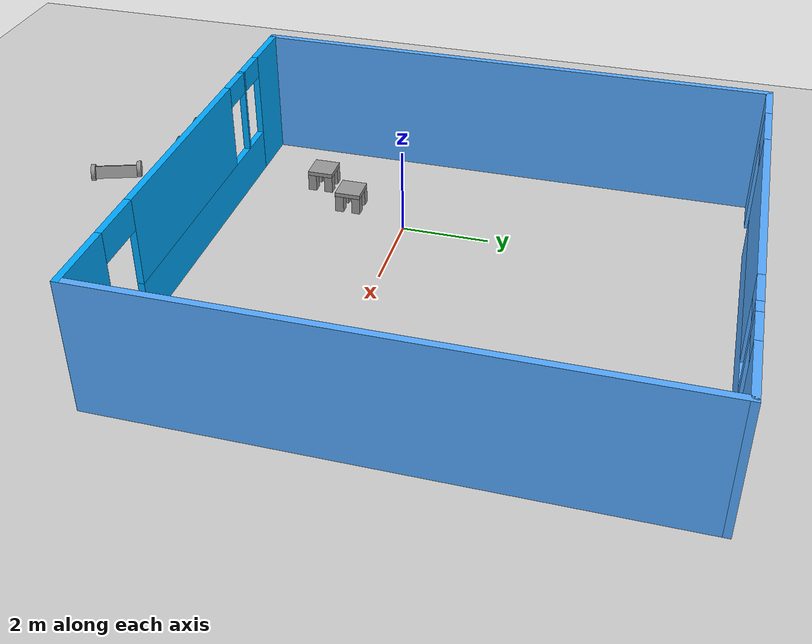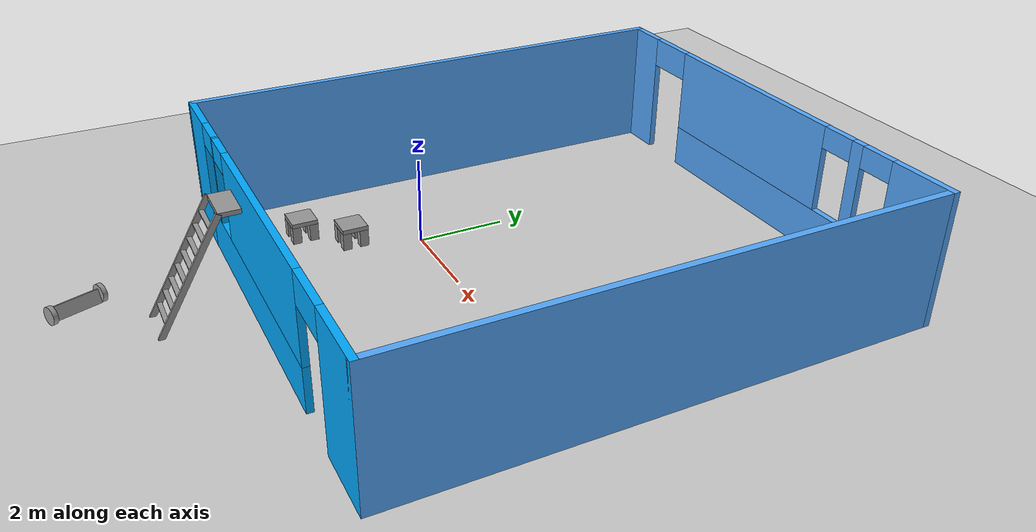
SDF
<sdf version="1.6">
 <world name="default">
  <plugin name="hello" filename="libhello.so"/>
  <light name="sun" type="directional">
   <pose>0 0 10 0 -0 0</pose>
   <diffuse>0.8 0.8 0.8 1</diffuse>
   <specular>0.2 0.2 0.2 1</specular>
   <attenuation>
    <range>1000</range>
    <constant>0.9</constant>
    <linear>0.01</linear>
    <quadratic>0.001</quadratic>
   </attenuation>
   <direction>-0.5 0.1 -0.9</direction>
  </light>
  <model name="ground_plane">
   <static>1</static>
   <link name="link">
    <collision name="collision">
     <geometry><plane><normal>0 0 1</normal><size>100 100</size></plane></geometry>
     <surface>
      <contact><collide_bitmask>65535</collide_bitmask></contact>
      <friction><ode><mu>100</mu><mu2>50</mu2></ode></friction>
     </surface>
    </collision>
    <visual name="visual">
     <cast_shadows>0</cast_shadows>
     <geometry><plane><normal>0 0 1</normal><size>100 100</size></plane></geometry>
     <material>
      <script><uri>file://media/materials/scripts/gazebo.material</uri><name>Gazebo/Grey</name></script>
     </material>
    </visual>
   </link>
  </model>
  <gravity>0 0 -9.8</gravity>
  <magnetic_field>6e-06 2.3e-05 -4.2e-05</magnetic_field>
  <atmosphere type="adiabatic"/>
  <physics name="default_physics" default="0" type="ode">
   <max_step_size>0.001</max_step_size>
   <real_time_factor>1</real_time_factor>
   <real_time_update_rate>1000</real_time_update_rate>
  </physics>
  <scene><ambient>0.4 0.4 0.4 1</ambient><background>0.7 0.7 0.7 1</background><shadows>1</shadows></scene>
  <spherical_coordinates>
   <surface_model>EARTH_WGS84</surface_model>
   <latitude_deg>0</latitude_deg>
   <longitude_deg>0</longitude_deg>
   <elevation>0</elevation>
   <heading_deg>0</heading_deg>
  </spherical_coordinates>
  <model name="table">
   <link name="link_1_clone">
    <pose>0.200158 0.19968 -0.050043 0 -0 0</pose>
    <inertial>
     <mass>1</mass>
     <inertia>
      <ixx>0.166667</ixx>
      <ixy>0</ixy>
      <ixz>0</ixz>
      <iyy>0.166667</iyy>
      <iyz>0</iyz>
      <izz>0.166667</izz>
     </inertia>
    </inertial>
    <visual name="visual">
     <geometry><box><size>0.2 0.2 0.4</size></box></geometry>
     <material>
      <lighting>1</lighting>
      <script><uri>file://media/materials/scripts/gazebo.material</uri><name>Gazebo/Grey</name></script>
      <shader type="pixel"><normal_map>__default__</normal_map></shader>
      <ambient>0.3 0.3 0.3 1</ambient>
      <diffuse>0.7 0.7 0.7 1</diffuse>
      <specular>0.01 0.01 0.01 1</specular>
      <emissive>0 0 0 1</emissive>
     </material>
    </visual>
    <collision name="collision">
     <geometry><box><size>0.2 0.2 0.4</size></box></geometry>
     <surface>
      <friction>
       <ode><mu>1</mu><mu2>1</mu2><fdir1>0 0 0</fdir1><slip1>0</slip1><slip2>0</slip2></ode>
       <torsional>
        <coefficient>1</coefficient>
        <patch_radius>0</patch_radius>
        <surface_radius>0</surface_radius>
        <use_patch_radius>1</use_patch_radius>
        <ode><slip>0</slip></ode>
       </torsional>
      </friction>
      <bounce><restitution_coefficient>0</restitution_coefficient><threshold>1e+06</threshold></bounce>
      <contact>
       <collide_without_contact>0</collide_without_contact>
       <collide_without_contact_bitmask>1</collide_without_contact_bitmask>
       <collide_bitmask>1</collide_bitmask>
       <ode>
        <soft_cfm>0</soft_cfm>
        <soft_erp>0.2</soft_erp>
        <kp>1e+13</kp>
        <kd>1</kd>
        <max_vel>0.01</max_vel>
        <min_depth>0</min_depth>
       </ode>
       <bullet>
        <split_impulse>1</split_impulse>
        <split_impulse_penetration_threshold>-0.01</split_impulse_penetration_threshold>
        <soft_cfm>0</soft_cfm>
        <soft_erp>0.2</soft_erp>
        <kp>1e+13</kp>
        <kd>1</kd>
       </bullet>
      </contact>
     </surface>
    </collision>
   </link>
   <link name="link_1_clone_0">
    <pose>-0.199842 -0.20032 -0.050043 0 -0 0</pose>
    <inertial>
     <mass>1</mass>
     <inertia>
      <ixx>0.166667</ixx>
      <ixy>0</ixy>
      <ixz>0</ixz>
      <iyy>0.166667</iyy>
      <iyz>0</iyz>
      <izz>0.166667</izz>
     </inertia>
    </inertial>
    <visual name="visual">
     <geometry><box><size>0.2 0.2 0.4</size></box></geometry>
     <material>
      <lighting>1</lighting>
      <script><uri>file://media/materials/scripts/gazebo.material</uri><name>Gazebo/Grey</name></script>
      <shader type="pixel"><normal_map>__default__</normal_map></shader>
      <ambient>0.3 0.3 0.3 1</ambient>
      <diffuse>0.7 0.7 0.7 1</diffuse>
      <specular>0.01 0.01 0.01 1</specular>
      <emissive>0 0 0 1</emissive>
     </material>
    </visual>
    <collision name="collision">
     <geometry><box><size>0.2 0.2 0.4</size></box></geometry>
     <surface>
      <friction>
       <ode><mu>1</mu><mu2>1</mu2><fdir1>0 0 0</fdir1><slip1>0</slip1><slip2>0</slip2></ode>
       <torsional>
        <coefficient>1</coefficient>
        <patch_radius>0</patch_radius>
        <surface_radius>0</surface_radius>
        <use_patch_radius>1</use_patch_radius>
        <ode><slip>0</slip></ode>
       </torsional>
      </friction>
      <bounce><restitution_coefficient>0</restitution_coefficient><threshold>1e+06</threshold></bounce>
      <contact>
       <collide_without_contact>0</collide_without_contact>
       <collide_without_contact_bitmask>1</collide_without_contact_bitmask>
       <collide_bitmask>1</collide_bitmask>
       <ode>
        <soft_cfm>0</soft_cfm>
        <soft_erp>0.2</soft_erp>
        <kp>1e+13</kp>
        <kd>1</kd>
        <max_vel>0.01</max_vel>
        <min_depth>0</min_depth>
       </ode>
       <bullet>
        <split_impulse>1</split_impulse>
        <split_impulse_penetration_threshold>-0.01</split_impulse_penetration_threshold>
        <soft_cfm>0</soft_cfm>
        <soft_erp>0.2</soft_erp>
        <kp>1e+13</kp>
        <kd>1</kd>
       </bullet>
      </contact>
     </surface>
    </collision>
   </link>
   <link name="link_1_clone_0_clone">
    <pose>-0.199842 0.19968 -0.050043 0 -0 0</pose>
    <inertial>
     <mass>1</mass>
     <inertia>
      <ixx>0.166667</ixx>
      <ixy>0</ixy>
      <ixz>0</ixz>
      <iyy>0.166667</iyy>
      <iyz>0</iyz>
      <izz>0.166667</izz>
     </inertia>
    </inertial>
    <visual name="visual">
     <geometry><box><size>0.2 0.2 0.4</size></box></geometry>
     <material>
      <lighting>1</lighting>
      <script><uri>file://media/materials/scripts/gazebo.material</uri><name>Gazebo/Grey</name></script>
      <shader type="pixel"><normal_map>__default__</normal_map></shader>
      <ambient>0.3 0.3 0.3 1</ambient>
      <diffuse>0.7 0.7 0.7 1</diffuse>
      <specular>0.01 0.01 0.01 1</specular>
      <emissive>0 0 0 1</emissive>
     </material>
    </visual>
    <collision name="collision">
     <geometry><box><size>0.2 0.2 0.4</size></box></geometry>
     <surface>
      <friction>
       <ode><mu>1</mu><mu2>1</mu2><fdir1>0 0 0</fdir1><slip1>0</slip1><slip2>0</slip2></ode>
       <torsional>
        <coefficient>1</coefficient>
        <patch_radius>0</patch_radius>
        <surface_radius>0</surface_radius>
        <use_patch_radius>1</use_patch_radius>
        <ode><slip>0</slip></ode>
       </torsional>
      </friction>
      <bounce><restitution_coefficient>0</restitution_coefficient><threshold>1e+06</threshold></bounce>
      <contact>
       <collide_without_contact>0</collide_without_contact>
       <collide_without_contact_bitmask>1</collide_without_contact_bitmask>
       <collide_bitmask>1</collide_bitmask>
       <ode>
        <soft_cfm>0</soft_cfm>
        <soft_erp>0.2</soft_erp>
        <kp>1e+13</kp>
        <kd>1</kd>
        <max_vel>0.01</max_vel>
        <min_depth>0</min_depth>
       </ode>
       <bullet>
        <split_impulse>1</split_impulse>
        <split_impulse_penetration_threshold>-0.01</split_impulse_penetration_threshold>
        <soft_cfm>0</soft_cfm>
        <soft_erp>0.2</soft_erp>
        <kp>1e+13</kp>
        <kd>1</kd>
       </bullet>
      </contact>
     </surface>
    </collision>
   </link>
   <link name="link_1_clone_1">
    <pose>0.200158 -0.20032 -0.050043 0 -0 0</pose>
    <inertial>
     <mass>1</mass>
     <inertia>
      <ixx>0.166667</ixx>
      <ixy>0</ixy>
      <ixz>0</ixz>
      <iyy>0.166667</iyy>
      <iyz>0</iyz>
      <izz>0.166667</izz>
     </inertia>
    </inertial>
    <visual name="visual">
     <geometry><box><size>0.2 0.2 0.4</size></box></geometry>
     <material>
      <lighting>1</lighting>
      <script><uri>file://media/materials/scripts/gazebo.material</uri><name>Gazebo/Grey</name></script>
      <shader type="pixel"><normal_map>__default__</normal_map></shader>
      <ambient>0.3 0.3 0.3 1</ambient>
      <diffuse>0.7 0.7 0.7 1</diffuse>
      <specular>0.01 0.01 0.01 1</specular>
      <emissive>0 0 0 1</emissive>
     </material>
    </visual>
    <collision name="collision">
     <geometry><box><size>0.2 0.2 0.4</size></box></geometry>
     <surface>
      <friction>
       <ode><mu>1</mu><mu2>1</mu2><fdir1>0 0 0</fdir1><slip1>0</slip1><slip2>0</slip2></ode>
       <torsional>
        <coefficient>1</coefficient>
        <patch_radius>0</patch_radius>
        <surface_radius>0</surface_radius>
        <use_patch_radius>1</use_patch_radius>
        <ode><slip>0</slip></ode>
       </torsional>
      </friction>
      <bounce><restitution_coefficient>0</restitution_coefficient><threshold>1e+06</threshold></bounce>
      <contact>
       <collide_without_contact>0</collide_without_contact>
       <collide_without_contact_bitmask>1</collide_without_contact_bitmask>
       <collide_bitmask>1</collide_bitmask>
       <ode>
        <soft_cfm>0</soft_cfm>
        <soft_erp>0.2</soft_erp>
        <kp>1e+13</kp>
        <kd>1</kd>
        <max_vel>0.01</max_vel>
        <min_depth>0</min_depth>
       </ode>
       <bullet>
        <split_impulse>1</split_impulse>
        <split_impulse_penetration_threshold>-0.01</split_impulse_penetration_threshold>
        <soft_cfm>0</soft_cfm>
        <soft_erp>0.2</soft_erp>
        <kp>1e+13</kp>
        <kd>1</kd>
       </bullet>
      </contact>
     </surface>
    </collision>
   </link>
   <link name="link_2">
    <pose>-0.000627 0.001275 0.200294 0 -0 0</pose>
    <inertial>
     <mass>1</mass>
     <inertia>
      <ixx>0.166667</ixx>
      <ixy>0</ixy>
      <ixz>0</ixz>
      <iyy>0.166667</iyy>
      <iyz>0</iyz>
      <izz>0.166667</izz>
     </inertia>
    </inertial>
    <visual name="visual">
     <geometry><box><size>0.6 0.6 0.1</size></box></geometry>
     <material>
      <lighting>1</lighting>
      <script><uri>file://media/materials/scripts/gazebo.material</uri><name>Gazebo/Grey</name></script>
      <shader type="pixel"><normal_map>__default__</normal_map></shader>
      <ambient>0.3 0.3 0.3 1</ambient>
      <diffuse>0.7 0.7 0.7 1</diffuse>
      <specular>0.01 0.01 0.01 1</specular>
      <emissive>0 0 0 1</emissive>
     </material>
    </visual>
    <collision name="collision">
     <geometry><box><size>0.6 0.6 0.1</size></box></geometry>
     <surface>
      <friction>
       <ode><mu>1</mu><mu2>1</mu2><fdir1>0 0 0</fdir1><slip1>0</slip1><slip2>0</slip2></ode>
       <torsional>
        <coefficient>1</coefficient>
        <patch_radius>0</patch_radius>
        <surface_radius>0</surface_radius>
        <use_patch_radius>1</use_patch_radius>
        <ode><slip>0</slip></ode>
       </torsional>
      </friction>
      <bounce><restitution_coefficient>0</restitution_coefficient><threshold>1e+06</threshold></bounce>
      <contact>
       <collide_without_contact>0</collide_without_contact>
       <collide_without_contact_bitmask>1</collide_without_contact_bitmask>
       <collide_bitmask>1</collide_bitmask>
       <ode>
        <soft_cfm>0</soft_cfm>
        <soft_erp>0.2</soft_erp>
        <kp>1e+13</kp>
        <kd>1</kd>
        <max_vel>0.01</max_vel>
        <min_depth>0</min_depth>
       </ode>
       <bullet>
        <split_impulse>1</split_impulse>
        <split_impulse_penetration_threshold>-0.01</split_impulse_penetration_threshold>
        <soft_cfm>0</soft_cfm>
        <soft_erp>0.2</soft_erp>
        <kp>1e+13</kp>
        <kd>1</kd>
       </bullet>
      </contact>
     </surface>
    </collision>
   </link>
   <joint name="link_2_JOINT_0" type="fixed">
    <parent>link_2</parent>
    <child>link_1_clone_0</child>
    <physics>
     <ode><limit><cfm>0</cfm><erp>0.2</erp></limit><suspension><cfm>0</cfm><erp>0.2</erp></suspension></ode>
    </physics>
   </joint>
   <joint name="link_2_JOINT_1" type="fixed">
    <parent>link_2</parent>
    <child>link_1_clone</child>
    <physics>
     <ode><limit><cfm>0</cfm><erp>0.2</erp></limit><suspension><cfm>0</cfm><erp>0.2</erp></suspension></ode>
    </physics>
   </joint>
   <joint name="link_2_JOINT_2" type="fixed">
    <parent>link_2</parent>
    <child>link_1_clone_1</child>
    <physics>
     <ode><limit><cfm>0</cfm><erp>0.2</erp></limit><suspension><cfm>0</cfm><erp>0.2</erp></suspension></ode>
    </physics>
   </joint>
   <joint name="link_2_JOINT_4" type="fixed">
    <parent>link_2</parent>
    <child>link_1_clone_0_clone</child>
    <physics>
     <ode><limit><cfm>0</cfm><erp>0.2</erp></limit><suspension><cfm>0</cfm><erp>0.2</erp></suspension></ode>
    </physics>
   </joint>
   <static>0</static>
   <pose>-1.38464 -2.38197 0.250043 -2e-06 -1e-06 3e-05</pose>
  </model>
  <model name="ladder_60deg_0rails">
   <static>1</static>
   <link name="step0">
    <pose>0 0.15396 0.266667 0 -0 0</pose>
    <inertial>
     <mass>9.75482</mass>
     <inertia>
      <ixx>0.00957124</ixx>
      <iyy>0.65963</iyy>
      <izz>0.666842</izz>
      <ixy>0</ixy>
      <ixz>0</ixz>
      <iyz>0</iyz>
     </inertia>
    </inertial>
    <collision name="collision"><geometry><box><size>0.9 0.1016 0.0381</size></box></geometry></collision>
    <visual name="visual">
     <geometry><box><size>0.9 0.1016 0.0381</size></box></geometry>
     <material>
      <script><uri>file://media/materials/scripts/gazebo.material</uri><name>Gazebo/Grey</name></script>
     </material>
    </visual>
   </link>
   <link name="step1">
    <pose>0 0.30792 0.533333 0 -0 0</pose>
    <inertial>
     <mass>9.75482</mass>
     <inertia>
      <ixx>0.00957124</ixx>
      <iyy>0.65963</iyy>
      <izz>0.666842</izz>
      <ixy>0</ixy>
      <ixz>0</ixz>
      <iyz>0</iyz>
     </inertia>
    </inertial>
    <collision name="collision"><geometry><box><size>0.9 0.1016 0.0381</size></box></geometry></collision>
    <visual name="visual">
     <geometry><box><size>0.9 0.1016 0.0381</size></box></geometry>
     <material>
      <script><uri>file://media/materials/scripts/gazebo.material</uri><name>Gazebo/Grey</name></script>
     </material>
    </visual>
   </link>
   <link name="step2">
    <pose>0 0.46188 0.8 0 -0 0</pose>
    <inertial>
     <mass>9.75482</mass>
     <inertia>
      <ixx>0.00957124</ixx>
      <iyy>0.65963</iyy>
      <izz>0.666842</izz>
      <ixy>0</ixy>
      <ixz>0</ixz>
      <iyz>0</iyz>
     </inertia>
    </inertial>
    <collision name="collision"><geometry><box><size>0.9 0.1016 0.0381</size></box></geometry></collision>
    <visual name="visual">
     <geometry><box><size>0.9 0.1016 0.0381</size></box></geometry>
     <material>
      <script><uri>file://media/materials/scripts/gazebo.material</uri><name>Gazebo/Grey</name></script>
     </material>
    </visual>
   </link>
   <link name="step3">
    <pose>0 0.61584 1.06667 0 -0 0</pose>
    <inertial>
     <mass>9.75482</mass>
     <inertia>
      <ixx>0.00957124</ixx>
      <iyy>0.65963</iyy>
      <izz>0.666842</izz>
      <ixy>0</ixy>
      <ixz>0</ixz>
      <iyz>0</iyz>
     </inertia>
    </inertial>
    <collision name="collision"><geometry><box><size>0.9 0.1016 0.0381</size></box></geometry></collision>
    <visual name="visual">
     <geometry><box><size>0.9 0.1016 0.0381</size></box></geometry>
     <material>
      <script><uri>file://media/materials/scripts/gazebo.material</uri><name>Gazebo/Grey</name></script>
     </material>
    </visual>
   </link>
   <link name="step4">
    <pose>0 0.7698 1.33333 0 -0 0</pose>
    <inertial>
     <mass>9.75482</mass>
     <inertia>
      <ixx>0.00957124</ixx>
      <iyy>0.65963</iyy>
      <izz>0.666842</izz>
      <ixy>0</ixy>
      <ixz>0</ixz>
      <iyz>0</iyz>
     </inertia>
    </inertial>
    <collision name="collision"><geometry><box><size>0.9 0.1016 0.0381</size></box></geometry></collision>
    <visual name="visual">
     <geometry><box><size>0.9 0.1016 0.0381</size></box></geometry>
     <material>
      <script><uri>file://media/materials/scripts/gazebo.material</uri><name>Gazebo/Grey</name></script>
     </material>
    </visual>
   </link>
   <link name="step5">
    <pose>0 0.92376 1.6 0 -0 0</pose>
    <inertial>
     <mass>9.75482</mass>
     <inertia>
      <ixx>0.00957124</ixx>
      <iyy>0.65963</iyy>
      <izz>0.666842</izz>
      <ixy>0</ixy>
      <ixz>0</ixz>
      <iyz>0</iyz>
     </inertia>
    </inertial>
    <collision name="collision"><geometry><box><size>0.9 0.1016 0.0381</size></box></geometry></collision>
    <visual name="visual">
     <geometry><box><size>0.9 0.1016 0.0381</size></box></geometry>
     <material>
      <script><uri>file://media/materials/scripts/gazebo.material</uri><name>Gazebo/Grey</name></script>
     </material>
    </visual>
   </link>
   <link name="step6">
    <pose>0 1.07772 1.86667 0 -0 0</pose>
    <inertial>
     <mass>9.75482</mass>
     <inertia>
      <ixx>0.00957124</ixx>
      <iyy>0.65963</iyy>
      <izz>0.666842</izz>
      <ixy>0</ixy>
      <ixz>0</ixz>
      <iyz>0</iyz>
     </inertia>
    </inertial>
    <collision name="collision"><geometry><box><size>0.9 0.1016 0.0381</size></box></geometry></collision>
    <visual name="visual">
     <geometry><box><size>0.9 0.1016 0.0381</size></box></geometry>
     <material>
      <script><uri>file://media/materials/scripts/gazebo.material</uri><name>Gazebo/Grey</name></script>
     </material>
    </visual>
   </link>
   <link name="step7">
    <pose>0 1.23168 2.13333 0 -0 0</pose>
    <inertial>
     <mass>9.75482</mass>
     <inertia>
      <ixx>0.00957124</ixx>
      <iyy>0.65963</iyy>
      <izz>0.666842</izz>
      <ixy>0</ixy>
      <ixz>0</ixz>
      <iyz>0</iyz>
     </inertia>
    </inertial>
    <collision name="collision"><geometry><box><size>0.9 0.1016 0.0381</size></box></geometry></collision>
    <visual name="visual">
     <geometry><box><size>0.9 0.1016 0.0381</size></box></geometry>
     <material>
      <script><uri>file://media/materials/scripts/gazebo.material</uri><name>Gazebo/Grey</name></script>
     </material>
    </visual>
   </link>
   <link name="landing">
    <pose>0 1.68564 2.4 0 -0 0</pose>
    <inertial>
     <mass>57.6072</mass>
     <inertia><ixx>1.73518</ixx><iyy>3.89545</iyy><izz>5.6167</izz><ixy>0</ixy><ixz>0</ixz><iyz>0</iyz></inertia>
    </inertial>
    <collision name="collision"><geometry><box><size>0.9 0.6 0.1016</size></box></geometry></collision>
    <visual name="visual">
     <geometry><box><size>0.9 0.6 0.1016</size></box></geometry>
     <material>
      <script><uri>file://media/materials/scripts/gazebo.material</uri><name>Gazebo/Grey</name></script>
     </material>
    </visual>
   </link>
   <link name="left_side_wall">
    <pose>-0.45 0.69282 1.2 1.0472 -0 0</pose>
    <collision name="collision"><geometry><box><size>0.0508 2.85128 0.13</size></box></geometry></collision>
    <visual name="visual">
     <geometry><box><size>0.0508 2.85128 0.13</size></box></geometry>
     <material>
      <script><uri>file://media/materials/scripts/gazebo.material</uri><name>Gazebo/Grey</name></script>
     </material>
    </visual>
   </link>
   <link name="right_side_wall">
    <pose>0.45 0.69282 1.2 1.0472 -0 0</pose>
    <collision name="collision"><geometry><box><size>0.0508 2.85128 0.13</size></box></geometry></collision>
    <visual name="visual">
     <geometry><box><size>0.0508 2.85128 0.13</size></box></geometry>
     <material>
      <script><uri>file://media/materials/scripts/gazebo.material</uri><name>Gazebo/Grey</name></script>
     </material>
    </visual>
   </link>
   <pose>0.882643 -6.08291 0 0 -0 0</pose>
  </model>
  <model name="bluehouse">
   <pose>2.21515 1.76967 0 0 -0 0</pose>
   <link name="Wall_5">
    <collision name="Wall_5_Collision">
     <geometry><box><size>12 0.15 3</size></box></geometry>
     <pose>0 0 1.5 0 -0 0</pose>
    </collision>
    <visual name="Wall_5_Visual">
     <pose>0 0 1.5 0 -0 0</pose>
     <geometry><box><size>12 0.15 3</size></box></geometry>
     <material>
      <script><uri>file://media/materials/scripts/gazebo.material</uri><name>Gazebo/Grey</name></script>
      <ambient>0.333333 0.666667 1 1</ambient>
     </material>
     <meta><layer>0</layer></meta>
    </visual>
    <pose>-5.3 0 0 0 0 -1.5708</pose>
   </link>
   <link name="Wall_6">
    <pose>-1e-06 -5.925 0 0 -0 0</pose>
    <visual name="Wall_6_Visual_0">
     <pose>-4.69968 0 1.5 0 -0 0</pose>
     <geometry><box><size>1.35065 0.15 3</size></box></geometry>
     <material>
      <script><uri>file://media/materials/scripts/gazebo.material</uri><name>Gazebo/Grey</name></script>
      <ambient>0 0.666667 1 1</ambient>
     </material>
     <meta><layer>0</layer></meta>
    </visual>
    <collision name="Wall_6_Collision_0">
     <geometry><box><size>1.35065 0.15 3</size></box></geometry>
     <pose>-4.69968 0 1.5 0 -0 0</pose>
    </collision>
    <visual name="Wall_6_Visual_1">
     <pose>4.574 0 1.5 0 -0 0</pose>
     <geometry><box><size>1.602 0.15 3</size></box></geometry>
     <material>
      <script><uri>file://media/materials/scripts/gazebo.material</uri><name>Gazebo/Grey</name></script>
      <ambient>0 0.666667 1 1</ambient>
     </material>
     <meta><layer>0</layer></meta>
    </visual>
    <collision name="Wall_6_Collision_1">
     <geometry><box><size>1.602 0.15 3</size></box></geometry>
     <pose>4.574 0 1.5 0 -0 0</pose>
    </collision>
    <visual name="Wall_6_Visual_2">
     <pose>-0.725675 0 0.5 0 -0 0</pose>
     <geometry><box><size>6.59735 0.15 1</size></box></geometry>
     <material>
      <script><uri>file://media/materials/scripts/gazebo.material</uri><name>Gazebo/Grey</name></script>
      <ambient>0 0.666667 1 1</ambient>
     </material>
     <meta><layer>0</layer></meta>
    </visual>
    <collision name="Wall_6_Collision_2">
     <geometry><box><size>6.59735 0.15 1</size></box></geometry>
     <pose>-0.725675 0 0.5 0 -0 0</pose>
    </collision>
    <visual name="Wall_6_Visual_3">
     <pose>-3.18814 0 2 0 -0 0</pose>
     <geometry><box><size>0.072422 0.15 2</size></box></geometry>
     <material>
      <script><uri>file://media/materials/scripts/gazebo.material</uri><name>Gazebo/Grey</name></script>
      <ambient>0 0.666667 1 1</ambient>
     </material>
     <meta><layer>0</layer></meta>
    </visual>
    <collision name="Wall_6_Collision_3">
     <geometry><box><size>0.072422 0.15 2</size></box></geometry>
     <pose>-3.18814 0 2 0 -0 0</pose>
    </collision>
    <visual name="Wall_6_Visual_4">
     <pose>0.110536 0 2 0 -0 0</pose>
     <geometry><box><size>4.92493 0.15 2</size></box></geometry>
     <material>
      <script><uri>file://media/materials/scripts/gazebo.material</uri><name>Gazebo/Grey</name></script>
      <ambient>0 0.666667 1 1</ambient>
     </material>
     <meta><layer>0</layer></meta>
    </visual>
    <collision name="Wall_6_Collision_4">
     <geometry><box><size>4.92493 0.15 2</size></box></geometry>
     <pose>0.110536 0 2 0 -0 0</pose>
    </collision>
    <visual name="Wall_6_Visual_5">
     <pose>3.173 0 2.65 0 -0 0</pose>
     <geometry><box><size>1.2 0.15 0.7</size></box></geometry>
     <material>
      <script><uri>file://media/materials/scripts/gazebo.material</uri><name>Gazebo/Grey</name></script>
      <ambient>0 0.666667 1 1</ambient>
     </material>
     <meta><layer>0</layer></meta>
    </visual>
    <collision name="Wall_6_Collision_5">
     <geometry><box><size>1.2 0.15 0.7</size></box></geometry>
     <pose>3.173 0 2.65 0 -0 0</pose>
    </collision>
    <visual name="Wall_6_Visual_6">
     <pose>-3.62435 0 2.75 0 -0 0</pose>
     <geometry><box><size>0.8 0.15 0.5</size></box></geometry>
     <material>
      <script><uri>file://media/materials/scripts/gazebo.material</uri><name>Gazebo/Grey</name></script>
      <ambient>0 0.666667 1 1</ambient>
     </material>
     <meta><layer>0</layer></meta>
    </visual>
    <collision name="Wall_6_Collision_6">
     <geometry><box><size>0.8 0.15 0.5</size></box></geometry>
     <pose>-3.62435 0 2.75 0 -0 0</pose>
    </collision>
    <visual name="Wall_6_Visual_7">
     <pose>-2.75193 0 2.75 0 -0 0</pose>
     <geometry><box><size>0.8 0.15 0.5</size></box></geometry>
     <material>
      <script><uri>file://media/materials/scripts/gazebo.material</uri><name>Gazebo/Grey</name></script>
      <ambient>0 0.666667 1 1</ambient>
     </material>
     <meta><layer>0</layer></meta>
    </visual>
    <collision name="Wall_6_Collision_7">
     <geometry><box><size>0.8 0.15 0.5</size></box></geometry>
     <pose>-2.75193 0 2.75 0 -0 0</pose>
    </collision>
   </link>
   <link name="Wall_7">
    <collision name="Wall_7_Collision">
     <geometry><box><size>12 0.15 3</size></box></geometry>
     <pose>0 0 1.5 0 -0 0</pose>
    </collision>
    <visual name="Wall_7_Visual">
     <pose>0 0 1.5 0 -0 0</pose>
     <geometry><box><size>12 0.15 3</size></box></geometry>
     <material>
      <script><uri>file://media/materials/scripts/gazebo.material</uri><name>Gazebo/Grey</name></script>
      <ambient>0.333333 0.666667 1 1</ambient>
     </material>
     <meta><layer>0</layer></meta>
    </visual>
    <pose>5.3 0 0 0 -0 1.5708</pose>
   </link>
   <link name="Wall_8">
    <pose>-1e-06 5.925 0 0 -0 3.14159</pose>
    <visual name="Wall_8_Visual_0">
     <pose>-4.6064 0 1.5 0 -0 0</pose>
     <geometry><box><size>1.5372 0.15 3</size></box></geometry>
     <material>
      <script><uri>file://media/materials/scripts/gazebo.material</uri><name>Gazebo/Grey</name></script>
      <ambient>0.333333 0.666667 1 1</ambient>
     </material>
     <meta><layer>0</layer></meta>
    </visual>
    <collision name="Wall_8_Collision_0">
     <geometry><box><size>1.5372 0.15 3</size></box></geometry>
     <pose>-4.6064 0 1.5 0 -0 0</pose>
    </collision>
    <visual name="Wall_8_Visual_1">
     <pose>4.83935 0 1.5 0 -0 0</pose>
     <geometry><box><size>1.0713 0.15 3</size></box></geometry>
     <material>
      <script><uri>file://media/materials/scripts/gazebo.material</uri><name>Gazebo/Grey</name></script>
      <ambient>0.333333 0.666667 1 1</ambient>
     </material>
     <meta><layer>0</layer></meta>
    </visual>
    <collision name="Wall_8_Collision_1">
     <geometry><box><size>1.0713 0.15 3</size></box></geometry>
     <pose>4.83935 0 1.5 0 -0 0</pose>
    </collision>
    <visual name="Wall_8_Visual_2">
     <pose>-0.367049 0 0.5 0 -0 0</pose>
     <geometry><box><size>6.9415 0.15 1</size></box></geometry>
     <material>
      <script><uri>file://media/materials/scripts/gazebo.material</uri><name>Gazebo/Grey</name></script>
      <ambient>0.333333 0.666667 1 1</ambient>
     </material>
     <meta><layer>0</layer></meta>
    </visual>
    <collision name="Wall_8_Collision_2">
     <geometry><box><size>6.9415 0.15 1</size></box></geometry>
     <pose>-0.367049 0 0.5 0 -0 0</pose>
    </collision>
    <visual name="Wall_8_Visual_3">
     <pose>-2.88235 0 2 0 -0 0</pose>
     <geometry><box><size>0.3109 0.15 2</size></box></geometry>
     <material>
      <script><uri>file://media/materials/scripts/gazebo.material</uri><name>Gazebo/Grey</name></script>
      <ambient>0.333333 0.666667 1 1</ambient>
     </material>
     <meta><layer>0</layer></meta>
    </visual>
    <collision name="Wall_8_Collision_3">
     <geometry><box><size>0.3109 0.15 2</size></box></geometry>
     <pose>-2.88235 0 2 0 -0 0</pose>
    </collision>
    <visual name="Wall_8_Visual_4">
     <pose>0.588401 0 2 0 -0 0</pose>
     <geometry><box><size>5.0306 0.15 2</size></box></geometry>
     <material>
      <script><uri>file://media/materials/scripts/gazebo.material</uri><name>Gazebo/Grey</name></script>
      <ambient>0.333333 0.666667 1 1</ambient>
     </material>
     <meta><layer>0</layer></meta>
    </visual>
    <collision name="Wall_8_Collision_4">
     <geometry><box><size>5.0306 0.15 2</size></box></geometry>
     <pose>0.588401 0 2 0 -0 0</pose>
    </collision>
    <visual name="Wall_8_Visual_5">
     <pose>3.7037 0 2.65 0 -0 0</pose>
     <geometry><box><size>1.2 0.15 0.7</size></box></geometry>
     <material>
      <script><uri>file://media/materials/scripts/gazebo.material</uri><name>Gazebo/Grey</name></script>
      <ambient>0.333333 0.666667 1 1</ambient>
     </material>
     <meta><layer>0</layer></meta>
    </visual>
    <collision name="Wall_8_Collision_5">
     <geometry><box><size>1.2 0.15 0.7</size></box></geometry>
     <pose>3.7037 0 2.65 0 -0 0</pose>
    </collision>
    <visual name="Wall_8_Visual_6">
     <pose>-3.4378 0 2.75 0 -0 0</pose>
     <geometry><box><size>0.8 0.15 0.5</size></box></geometry>
     <material>
      <script><uri>file://media/materials/scripts/gazebo.material</uri><name>Gazebo/Grey</name></script>
      <ambient>0.333333 0.666667 1 1</ambient>
     </material>
     <meta><layer>0</layer></meta>
    </visual>
    <collision name="Wall_8_Collision_6">
     <geometry><box><size>0.8 0.15 0.5</size></box></geometry>
     <pose>-3.4378 0 2.75 0 -0 0</pose>
    </collision>
    <visual name="Wall_8_Visual_7">
     <pose>-2.3269 0 2.75 0 -0 0</pose>
     <geometry><box><size>0.8 0.15 0.5</size></box></geometry>
     <material>
      <script><uri>file://media/materials/scripts/gazebo.material</uri><name>Gazebo/Grey</name></script>
      <ambient>0.333333 0.666667 1 1</ambient>
     </material>
     <meta><layer>0</layer></meta>
    </visual>
    <collision name="Wall_8_Collision_7">
     <geometry><box><size>0.8 0.15 0.5</size></box></geometry>
     <pose>-2.3269 0 2.75 0 -0 0</pose>
    </collision>
   </link>
   <static>1</static>
  </model>
  <model name="two_wheel_robot">
   <link name="link_0">
    <pose>-0.016667 -0 0 0 -0 0</pose>
    <inertial>
     <mass>1</mass>
     <inertia>
      <ixx>0.166667</ixx>
      <ixy>0</ixy>
      <ixz>0</ixz>
      <iyy>0.166667</iyy>
      <iyz>0</iyz>
      <izz>0.166667</izz>
     </inertia>
    </inertial>
    <visual name="visual">
     <geometry><box><size>0.3 1 0.1</size></box></geometry>
     <material>
      <lighting>1</lighting>
      <script><uri>file://media/materials/scripts/gazebo.material</uri><name>Gazebo/Grey</name></script>
      <shader type="pixel"><normal_map>__default__</normal_map></shader>
      <ambient>0.3 0.3 0.3 1</ambient>
      <diffuse>0.7 0.7 0.7 1</diffuse>
      <specular>0.01 0.01 0.01 1</specular>
      <emissive>0 0 0 1</emissive>
     </material>
    </visual>
    <collision name="collision">
     <geometry><box><size>0.3 1 0.1</size></box></geometry>
     <surface>
      <friction>
       <ode><mu>1</mu><mu2>1</mu2><fdir1>0 0 0</fdir1><slip1>0</slip1><slip2>0</slip2></ode>
       <torsional>
        <coefficient>1</coefficient>
        <patch_radius>0</patch_radius>
        <surface_radius>0</surface_radius>
        <use_patch_radius>1</use_patch_radius>
        <ode><slip>0</slip></ode>
       </torsional>
      </friction>
      <bounce><restitution_coefficient>0</restitution_coefficient><threshold>1e+06</threshold></bounce>
      <contact>
       <collide_without_contact>0</collide_without_contact>
       <collide_without_contact_bitmask>1</collide_without_contact_bitmask>
       <collide_bitmask>1</collide_bitmask>
       <ode>
        <soft_cfm>0</soft_cfm>
        <soft_erp>0.2</soft_erp>
        <kp>1e+13</kp>
        <kd>1</kd>
        <max_vel>0.01</max_vel>
        <min_depth>0</min_depth>
       </ode>
       <bullet>
        <split_impulse>1</split_impulse>
        <split_impulse_penetration_threshold>-0.01</split_impulse_penetration_threshold>
        <soft_cfm>0</soft_cfm>
        <soft_erp>0.2</soft_erp>
        <kp>1e+13</kp>
        <kd>1</kd>
       </bullet>
      </contact>
     </surface>
    </collision>
   </link>
   <link name="link_1">
    <pose>-0.016667 -0.55002 0 1.5707 -0 0</pose>
    <inertial>
     <mass>1</mass>
     <inertia><ixx>0.145833</ixx><ixy>0</ixy><ixz>0</ixz><iyy>0.145833</iyy><iyz>0</iyz><izz>0.125</izz></inertia>
    </inertial>
    <visual name="visual">
     <geometry><cylinder><radius>0.2</radius><length>0.1</length></cylinder></geometry>
     <material>
      <lighting>1</lighting>
      <script><uri>file://media/materials/scripts/gazebo.material</uri><name>Gazebo/Grey</name></script>
      <shader type="pixel"><normal_map>__default__</normal_map></shader>
      <ambient>0.3 0.3 0.3 1</ambient>
      <diffuse>0.7 0.7 0.7 1</diffuse>
      <specular>0.01 0.01 0.01 1</specular>
      <emissive>0 0 0 1</emissive>
     </material>
    </visual>
    <collision name="collision">
     <geometry><cylinder><radius>0.2</radius><length>0.1</length></cylinder></geometry>
     <surface>
      <friction>
       <ode><mu>1</mu><mu2>1</mu2><fdir1>0 0 0</fdir1><slip1>0</slip1><slip2>0</slip2></ode>
       <torsional>
        <coefficient>1</coefficient>
        <patch_radius>0</patch_radius>
        <surface_radius>0</surface_radius>
        <use_patch_radius>1</use_patch_radius>
        <ode><slip>0</slip></ode>
       </torsional>
      </friction>
      <bounce><restitution_coefficient>0</restitution_coefficient><threshold>1e+06</threshold></bounce>
      <contact>
       <collide_without_contact>0</collide_without_contact>
       <collide_without_contact_bitmask>1</collide_without_contact_bitmask>
       <collide_bitmask>1</collide_bitmask>
       <ode>
        <soft_cfm>0</soft_cfm>
        <soft_erp>0.2</soft_erp>
        <kp>1e+13</kp>
        <kd>1</kd>
        <max_vel>0.01</max_vel>
        <min_depth>0</min_depth>
       </ode>
       <bullet>
        <split_impulse>1</split_impulse>
        <split_impulse_penetration_threshold>-0.01</split_impulse_penetration_threshold>
        <soft_cfm>0</soft_cfm>
        <soft_erp>0.2</soft_erp>
        <kp>1e+13</kp>
        <kd>1</kd>
       </bullet>
      </contact>
     </surface>
    </collision>
   </link>
   <link name="link_1_clone">
    <pose>0.033333 0.550019 0 1.5707 -0 0</pose>
    <inertial>
     <mass>1</mass>
     <inertia><ixx>0.145833</ixx><ixy>0</ixy><ixz>0</ixz><iyy>0.145833</iyy><iyz>0</iyz><izz>0.125</izz></inertia>
    </inertial>
    <visual name="visual">
     <geometry><cylinder><radius>0.2</radius><length>0.1</length></cylinder></geometry>
     <material>
      <lighting>1</lighting>
      <script><uri>file://media/materials/scripts/gazebo.material</uri><name>Gazebo/Grey</name></script>
      <shader type="pixel"><normal_map>__default__</normal_map></shader>
      <ambient>0.3 0.3 0.3 1</ambient>
      <diffuse>0.7 0.7 0.7 1</diffuse>
      <specular>0.01 0.01 0.01 1</specular>
      <emissive>0 0 0 1</emissive>
     </material>
    </visual>
    <collision name="collision">
     <geometry><cylinder><radius>0.2</radius><length>0.1</length></cylinder></geometry>
     <surface>
      <friction>
       <ode><mu>1</mu><mu2>1</mu2><fdir1>0 0 0</fdir1><slip1>0</slip1><slip2>0</slip2></ode>
       <torsional>
        <coefficient>1</coefficient>
        <patch_radius>0</patch_radius>
        <surface_radius>0</surface_radius>
        <use_patch_radius>1</use_patch_radius>
        <ode><slip>0</slip></ode>
       </torsional>
      </friction>
      <bounce><restitution_coefficient>0</restitution_coefficient><threshold>1e+06</threshold></bounce>
      <contact>
       <collide_without_contact>0</collide_without_contact>
       <collide_without_contact_bitmask>1</collide_without_contact_bitmask>
       <collide_bitmask>1</collide_bitmask>
       <ode>
        <soft_cfm>0</soft_cfm>
        <soft_erp>0.2</soft_erp>
        <kp>1e+13</kp>
        <kd>1</kd>
        <max_vel>0.01</max_vel>
        <min_depth>0</min_depth>
       </ode>
       <bullet>
        <split_impulse>1</split_impulse>
        <split_impulse_penetration_threshold>-0.01</split_impulse_penetration_threshold>
        <soft_cfm>0</soft_cfm>
        <soft_erp>0.2</soft_erp>
        <kp>1e+13</kp>
        <kd>1</kd>
       </bullet>
      </contact>
     </surface>
    </collision>
   </link>
   <joint name="link_0_JOINT_0" type="revolute">
    <parent>link_0</parent>
    <child>link_1</child>
    <axis>
     <xyz>0 0 1</xyz>
     <use_parent_model_frame>0</use_parent_model_frame>
     <limit>
      <lower>-1.79769e+308</lower>
      <upper>1.79769e+308</upper>
      <effort>-1</effort>
      <velocity>-1</velocity>
     </limit>
     <dynamics>
      <spring_reference>0</spring_reference>
      <spring_stiffness>0</spring_stiffness>
      <damping>0</damping>
     </dynamics>
    </axis>
    <physics>
     <ode><limit><cfm>0</cfm><erp>0.2</erp></limit><suspension><cfm>0</cfm><erp>0.2</erp></suspension></ode>
    </physics>
   </joint>
   <joint name="link_0_JOINT_1" type="revolute">
    <parent>link_0</parent>
    <child>link_1_clone</child>
    <axis>
     <xyz>0 0 1</xyz>
     <use_parent_model_frame>0</use_parent_model_frame>
     <limit>
      <lower>-1.79769e+308</lower>
      <upper>1.79769e+308</upper>
      <effort>-1</effort>
      <velocity>-1</velocity>
     </limit>
     <dynamics>
      <spring_reference>0</spring_reference>
      <spring_stiffness>0</spring_stiffness>
      <damping>0</damping>
     </dynamics>
    </axis>
    <physics>
     <ode><limit><cfm>0</cfm><erp>0.2</erp></limit><suspension><cfm>0</cfm><erp>0.2</erp></suspension></ode>
    </physics>
   </joint>
   <static>0</static>
   <pose>-0.358449 -7.43638 0.194198 -3.02901 -1.18633 -2.84525</pose>
  </model>
  <model name="table_clone">
   <link name="link_1_clone">
    <pose>0.200158 0.19968 -0.050043 0 -0 0</pose>
    <inertial>
     <mass>1</mass>
     <inertia>
      <ixx>0.166667</ixx>
      <ixy>0</ixy>
      <ixz>0</ixz>
      <iyy>0.166667</iyy>
      <iyz>0</iyz>
      <izz>0.166667</izz>
     </inertia>
    </inertial>
    <visual name="visual">
     <geometry><box><size>0.2 0.2 0.4</size></box></geometry>
     <material>
      <lighting>1</lighting>
      <script><uri>file://media/materials/scripts/gazebo.material</uri><name>Gazebo/Grey</name></script>
      <shader type="pixel"><normal_map>__default__</normal_map></shader>
      <ambient>0.3 0.3 0.3 1</ambient>
      <diffuse>0.7 0.7 0.7 1</diffuse>
      <specular>0.01 0.01 0.01 1</specular>
      <emissive>0 0 0 1</emissive>
     </material>
    </visual>
    <collision name="collision">
     <geometry><box><size>0.2 0.2 0.4</size></box></geometry>
     <surface>
      <friction>
       <ode><mu>1</mu><mu2>1</mu2><fdir1>0 0 0</fdir1><slip1>0</slip1><slip2>0</slip2></ode>
       <torsional>
        <coefficient>1</coefficient>
        <patch_radius>0</patch_radius>
        <surface_radius>0</surface_radius>
        <use_patch_radius>1</use_patch_radius>
        <ode><slip>0</slip></ode>
       </torsional>
      </friction>
      <bounce><restitution_coefficient>0</restitution_coefficient><threshold>1e+06</threshold></bounce>
      <contact>
       <collide_without_contact>0</collide_without_contact>
       <collide_without_contact_bitmask>1</collide_without_contact_bitmask>
       <collide_bitmask>1</collide_bitmask>
       <ode>
        <soft_cfm>0</soft_cfm>
        <soft_erp>0.2</soft_erp>
        <kp>1e+13</kp>
        <kd>1</kd>
        <max_vel>0.01</max_vel>
        <min_depth>0</min_depth>
       </ode>
       <bullet>
        <split_impulse>1</split_impulse>
        <split_impulse_penetration_threshold>-0.01</split_impulse_penetration_threshold>
        <soft_cfm>0</soft_cfm>
        <soft_erp>0.2</soft_erp>
        <kp>1e+13</kp>
        <kd>1</kd>
       </bullet>
      </contact>
     </surface>
    </collision>
   </link>
   <link name="link_1_clone_0">
    <pose>-0.199842 -0.20032 -0.050043 0 -0 0</pose>
    <inertial>
     <mass>1</mass>
     <inertia>
      <ixx>0.166667</ixx>
      <ixy>0</ixy>
      <ixz>0</ixz>
      <iyy>0.166667</iyy>
      <iyz>0</iyz>
      <izz>0.166667</izz>
     </inertia>
    </inertial>
    <visual name="visual">
     <geometry><box><size>0.2 0.2 0.4</size></box></geometry>
     <material>
      <lighting>1</lighting>
      <script><uri>file://media/materials/scripts/gazebo.material</uri><name>Gazebo/Grey</name></script>
      <shader type="pixel"><normal_map>__default__</normal_map></shader>
      <ambient>0.3 0.3 0.3 1</ambient>
      <diffuse>0.7 0.7 0.7 1</diffuse>
      <specular>0.01 0.01 0.01 1</specular>
      <emissive>0 0 0 1</emissive>
     </material>
    </visual>
    <collision name="collision">
     <geometry><box><size>0.2 0.2 0.4</size></box></geometry>
     <surface>
      <friction>
       <ode><mu>1</mu><mu2>1</mu2><fdir1>0 0 0</fdir1><slip1>0</slip1><slip2>0</slip2></ode>
       <torsional>
        <coefficient>1</coefficient>
        <patch_radius>0</patch_radius>
        <surface_radius>0</surface_radius>
        <use_patch_radius>1</use_patch_radius>
        <ode><slip>0</slip></ode>
       </torsional>
      </friction>
      <bounce><restitution_coefficient>0</restitution_coefficient><threshold>1e+06</threshold></bounce>
      <contact>
       <collide_without_contact>0</collide_without_contact>
       <collide_without_contact_bitmask>1</collide_without_contact_bitmask>
       <collide_bitmask>1</collide_bitmask>
       <ode>
        <soft_cfm>0</soft_cfm>
        <soft_erp>0.2</soft_erp>
        <kp>1e+13</kp>
        <kd>1</kd>
        <max_vel>0.01</max_vel>
        <min_depth>0</min_depth>
       </ode>
       <bullet>
        <split_impulse>1</split_impulse>
        <split_impulse_penetration_threshold>-0.01</split_impulse_penetration_threshold>
        <soft_cfm>0</soft_cfm>
        <soft_erp>0.2</soft_erp>
        <kp>1e+13</kp>
        <kd>1</kd>
       </bullet>
      </contact>
     </surface>
    </collision>
   </link>
   <link name="link_1_clone_0_clone">
    <pose>-0.199842 0.19968 -0.050043 0 -0 0</pose>
    <inertial>
     <mass>1</mass>
     <inertia>
      <ixx>0.166667</ixx>
      <ixy>0</ixy>
      <ixz>0</ixz>
      <iyy>0.166667</iyy>
      <iyz>0</iyz>
      <izz>0.166667</izz>
     </inertia>
    </inertial>
    <visual name="visual">
     <geometry><box><size>0.2 0.2 0.4</size></box></geometry>
     <material>
      <lighting>1</lighting>
      <script><uri>file://media/materials/scripts/gazebo.material</uri><name>Gazebo/Grey</name></script>
      <shader type="pixel"><normal_map>__default__</normal_map></shader>
      <ambient>0.3 0.3 0.3 1</ambient>
      <diffuse>0.7 0.7 0.7 1</diffuse>
      <specular>0.01 0.01 0.01 1</specular>
      <emissive>0 0 0 1</emissive>
     </material>
    </visual>
    <collision name="collision">
     <geometry><box><size>0.2 0.2 0.4</size></box></geometry>
     <surface>
      <friction>
       <ode><mu>1</mu><mu2>1</mu2><fdir1>0 0 0</fdir1><slip1>0</slip1><slip2>0</slip2></ode>
       <torsional>
        <coefficient>1</coefficient>
        <patch_radius>0</patch_radius>
        <surface_radius>0</surface_radius>
        <use_patch_radius>1</use_patch_radius>
        <ode><slip>0</slip></ode>
       </torsional>
      </friction>
      <bounce><restitution_coefficient>0</restitution_coefficient><threshold>1e+06</threshold></bounce>
      <contact>
       <collide_without_contact>0</collide_without_contact>
       <collide_without_contact_bitmask>1</collide_without_contact_bitmask>
       <collide_bitmask>1</collide_bitmask>
       <ode>
        <soft_cfm>0</soft_cfm>
        <soft_erp>0.2</soft_erp>
        <kp>1e+13</kp>
        <kd>1</kd>
        <max_vel>0.01</max_vel>
        <min_depth>0</min_depth>
       </ode>
       <bullet>
        <split_impulse>1</split_impulse>
        <split_impulse_penetration_threshold>-0.01</split_impulse_penetration_threshold>
        <soft_cfm>0</soft_cfm>
        <soft_erp>0.2</soft_erp>
        <kp>1e+13</kp>
        <kd>1</kd>
       </bullet>
      </contact>
     </surface>
    </collision>
   </link>
   <link name="link_1_clone_1">
    <pose>0.200158 -0.20032 -0.050043 0 -0 0</pose>
    <inertial>
     <mass>1</mass>
     <inertia>
      <ixx>0.166667</ixx>
      <ixy>0</ixy>
      <ixz>0</ixz>
      <iyy>0.166667</iyy>
      <iyz>0</iyz>
      <izz>0.166667</izz>
     </inertia>
    </inertial>
    <visual name="visual">
     <geometry><box><size>0.2 0.2 0.4</size></box></geometry>
     <material>
      <lighting>1</lighting>
      <script><uri>file://media/materials/scripts/gazebo.material</uri><name>Gazebo/Grey</name></script>
      <shader type="pixel"><normal_map>__default__</normal_map></shader>
      <ambient>0.3 0.3 0.3 1</ambient>
      <diffuse>0.7 0.7 0.7 1</diffuse>
      <specular>0.01 0.01 0.01 1</specular>
      <emissive>0 0 0 1</emissive>
     </material>
    </visual>
    <collision name="collision">
     <geometry><box><size>0.2 0.2 0.4</size></box></geometry>
     <surface>
      <friction>
       <ode><mu>1</mu><mu2>1</mu2><fdir1>0 0 0</fdir1><slip1>0</slip1><slip2>0</slip2></ode>
       <torsional>
        <coefficient>1</coefficient>
        <patch_radius>0</patch_radius>
        <surface_radius>0</surface_radius>
        <use_patch_radius>1</use_patch_radius>
        <ode><slip>0</slip></ode>
       </torsional>
      </friction>
      <bounce><restitution_coefficient>0</restitution_coefficient><threshold>1e+06</threshold></bounce>
      <contact>
       <collide_without_contact>0</collide_without_contact>
       <collide_without_contact_bitmask>1</collide_without_contact_bitmask>
       <collide_bitmask>1</collide_bitmask>
       <ode>
        <soft_cfm>0</soft_cfm>
        <soft_erp>0.2</soft_erp>
        <kp>1e+13</kp>
        <kd>1</kd>
        <max_vel>0.01</max_vel>
        <min_depth>0</min_depth>
       </ode>
       <bullet>
        <split_impulse>1</split_impulse>
        <split_impulse_penetration_threshold>-0.01</split_impulse_penetration_threshold>
        <soft_cfm>0</soft_cfm>
        <soft_erp>0.2</soft_erp>
        <kp>1e+13</kp>
        <kd>1</kd>
       </bullet>
      </contact>
     </surface>
    </collision>
   </link>
   <link name="link_2">
    <pose>-0.000627 0.001275 0.200294 0 -0 0</pose>
    <inertial>
     <mass>1</mass>
     <inertia>
      <ixx>0.166667</ixx>
      <ixy>0</ixy>
      <ixz>0</ixz>
      <iyy>0.166667</iyy>
      <iyz>0</iyz>
      <izz>0.166667</izz>
     </inertia>
    </inertial>
    <visual name="visual">
     <geometry><box><size>0.6 0.6 0.1</size></box></geometry>
     <material>
      <lighting>1</lighting>
      <script><uri>file://media/materials/scripts/gazebo.material</uri><name>Gazebo/Grey</name></script>
      <shader type="pixel"><normal_map>__default__</normal_map></shader>
      <ambient>0.3 0.3 0.3 1</ambient>
      <diffuse>0.7 0.7 0.7 1</diffuse>
      <specular>0.01 0.01 0.01 1</specular>
      <emissive>0 0 0 1</emissive>
     </material>
    </visual>
    <collision name="collision">
     <geometry><box><size>0.6 0.6 0.1</size></box></geometry>
     <surface>
      <friction>
       <ode><mu>1</mu><mu2>1</mu2><fdir1>0 0 0</fdir1><slip1>0</slip1><slip2>0</slip2></ode>
       <torsional>
        <coefficient>1</coefficient>
        <patch_radius>0</patch_radius>
        <surface_radius>0</surface_radius>
        <use_patch_radius>1</use_patch_radius>
        <ode><slip>0</slip></ode>
       </torsional>
      </friction>
      <bounce><restitution_coefficient>0</restitution_coefficient><threshold>1e+06</threshold></bounce>
      <contact>
       <collide_without_contact>0</collide_without_contact>
       <collide_without_contact_bitmask>1</collide_without_contact_bitmask>
       <collide_bitmask>1</collide_bitmask>
       <ode>
        <soft_cfm>0</soft_cfm>
        <soft_erp>0.2</soft_erp>
        <kp>1e+13</kp>
        <kd>1</kd>
        <max_vel>0.01</max_vel>
        <min_depth>0</min_depth>
       </ode>
       <bullet>
        <split_impulse>1</split_impulse>
        <split_impulse_penetration_threshold>-0.01</split_impulse_penetration_threshold>
        <soft_cfm>0</soft_cfm>
        <soft_erp>0.2</soft_erp>
        <kp>1e+13</kp>
        <kd>1</kd>
       </bullet>
      </contact>
     </surface>
    </collision>
   </link>
   <joint name="link_2_JOINT_0" type="fixed">
    <parent>link_2</parent>
    <child>link_1_clone_0</child>
    <physics>
     <ode><limit><cfm>0</cfm><erp>0.2</erp></limit><suspension><cfm>0</cfm><erp>0.2</erp></suspension></ode>
    </physics>
   </joint>
   <joint name="link_2_JOINT_1" type="fixed">
    <parent>link_2</parent>
    <child>link_1_clone</child>
    <physics>
     <ode><limit><cfm>0</cfm><erp>0.2</erp></limit><suspension><cfm>0</cfm><erp>0.2</erp></suspension></ode>
    </physics>
   </joint>
   <joint name="link_2_JOINT_2" type="fixed">
    <parent>link_2</parent>
    <child>link_1_clone_1</child>
    <physics>
     <ode><limit><cfm>0</cfm><erp>0.2</erp></limit><suspension><cfm>0</cfm><erp>0.2</erp></suspension></ode>
    </physics>
   </joint>
   <joint name="link_2_JOINT_4" type="fixed">
    <parent>link_2</parent>
    <child>link_1_clone_0_clone</child>
    <physics>
     <ode><limit><cfm>0</cfm><erp>0.2</erp></limit><suspension><cfm>0</cfm><erp>0.2</erp></suspension></ode>
    </physics>
   </joint>
   <static>0</static>
   <pose>-0.625138 -1.4505 0.250043 1e-06 -0 0.000488</pose>
  </model>
 </world>
</sdf>
